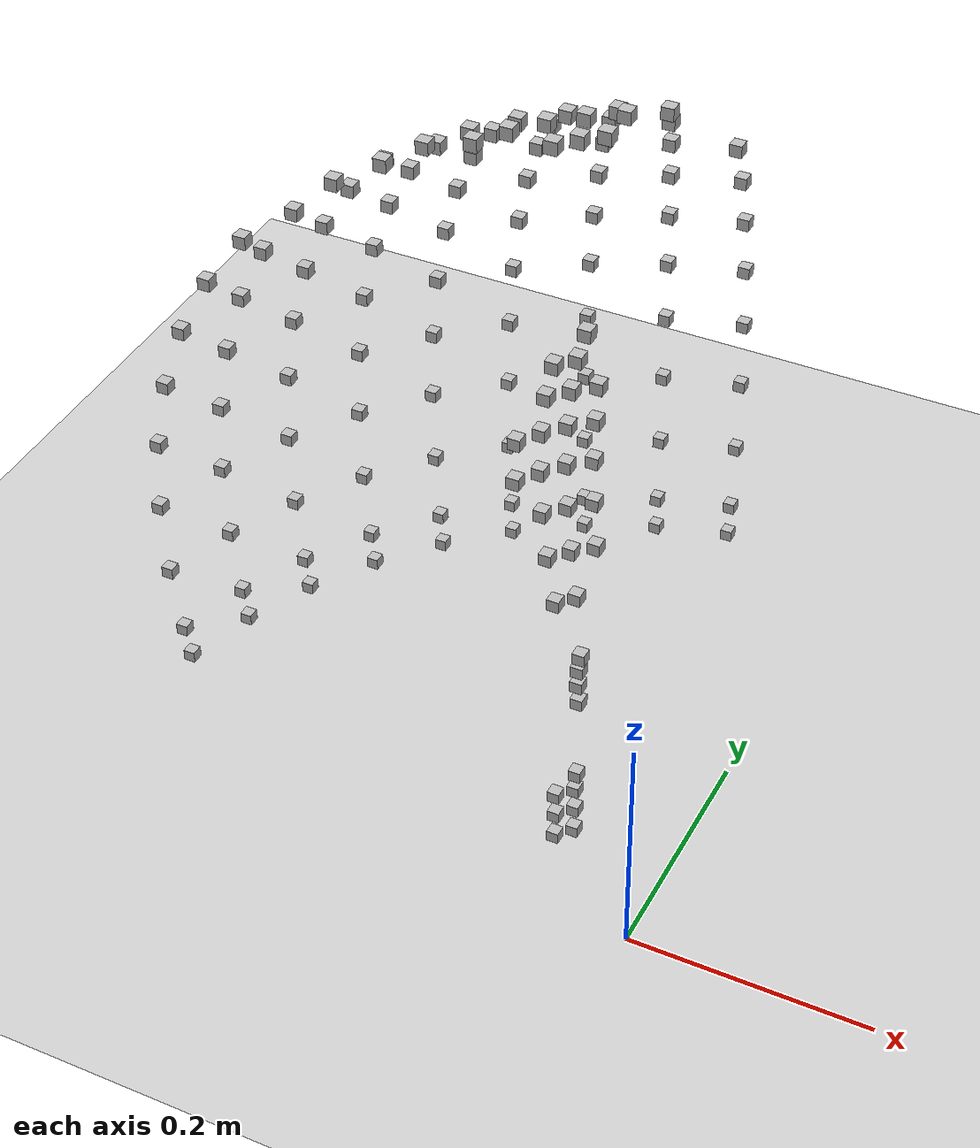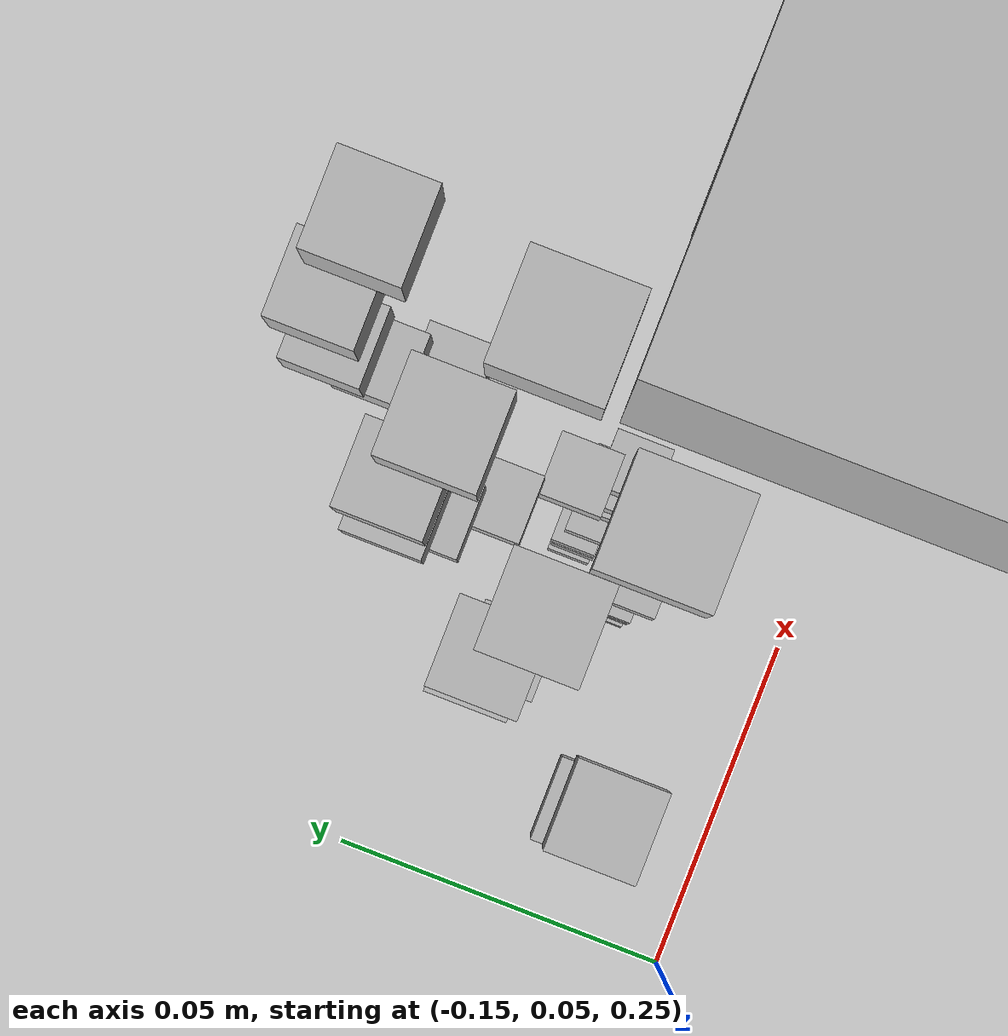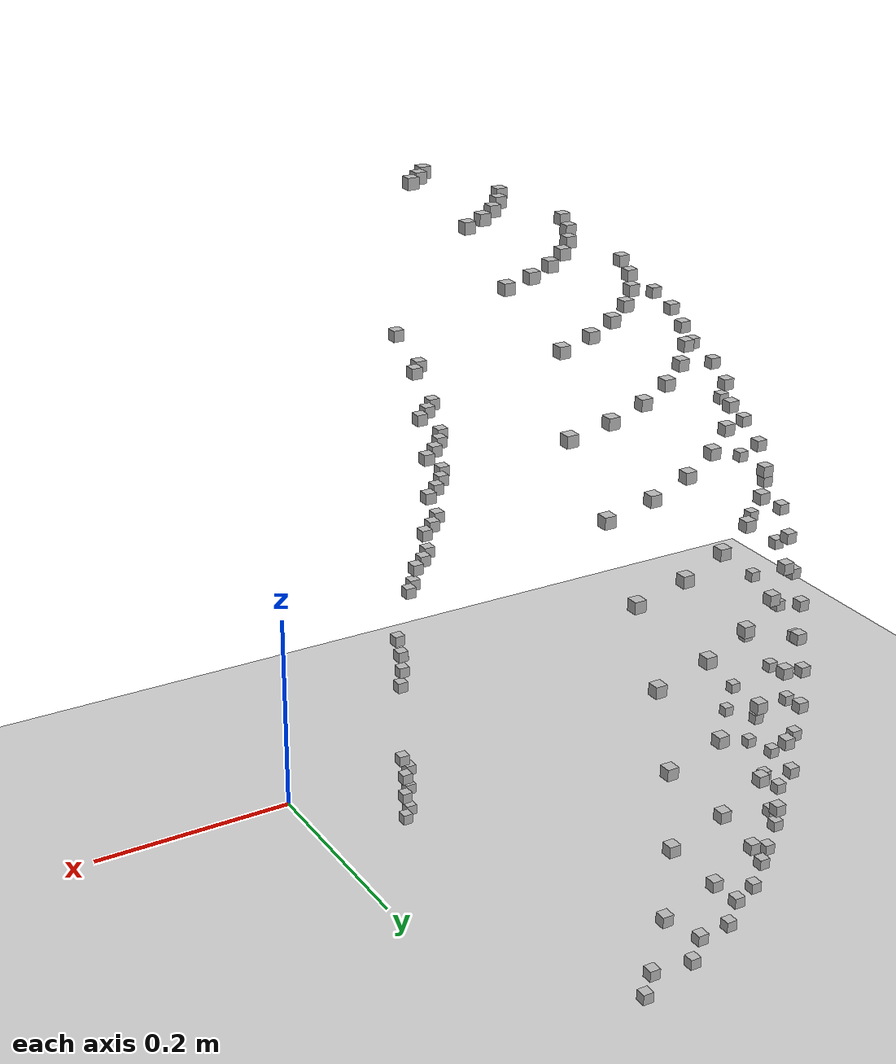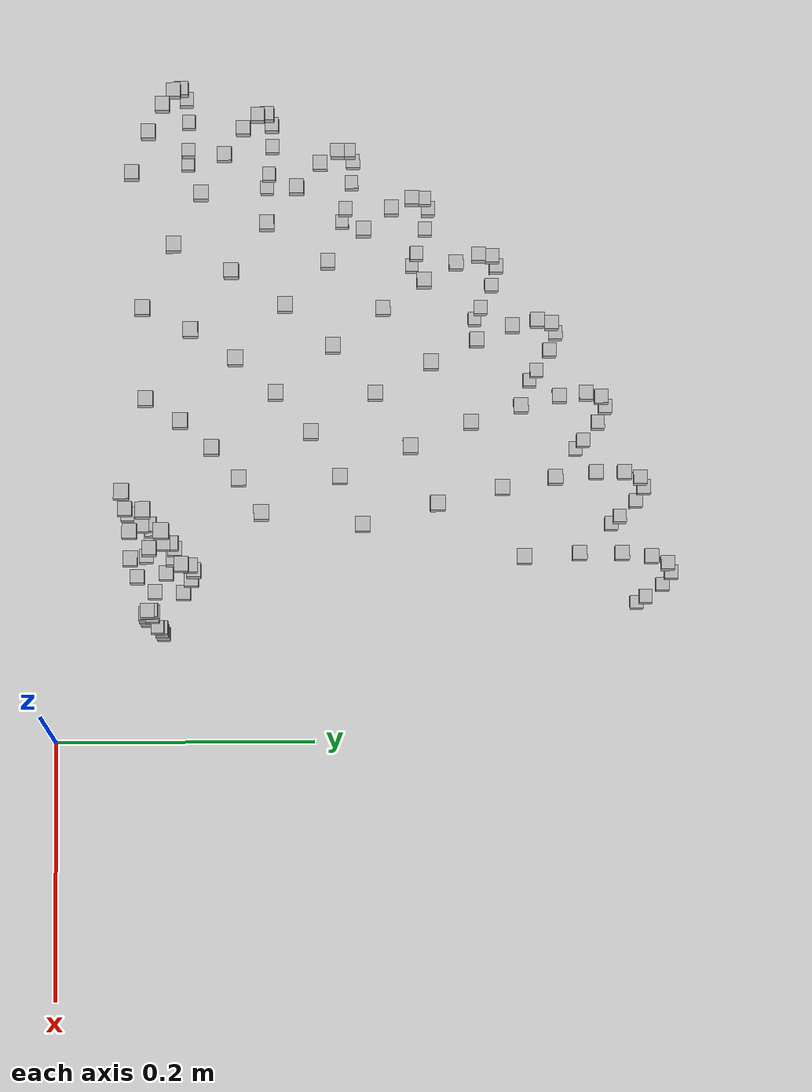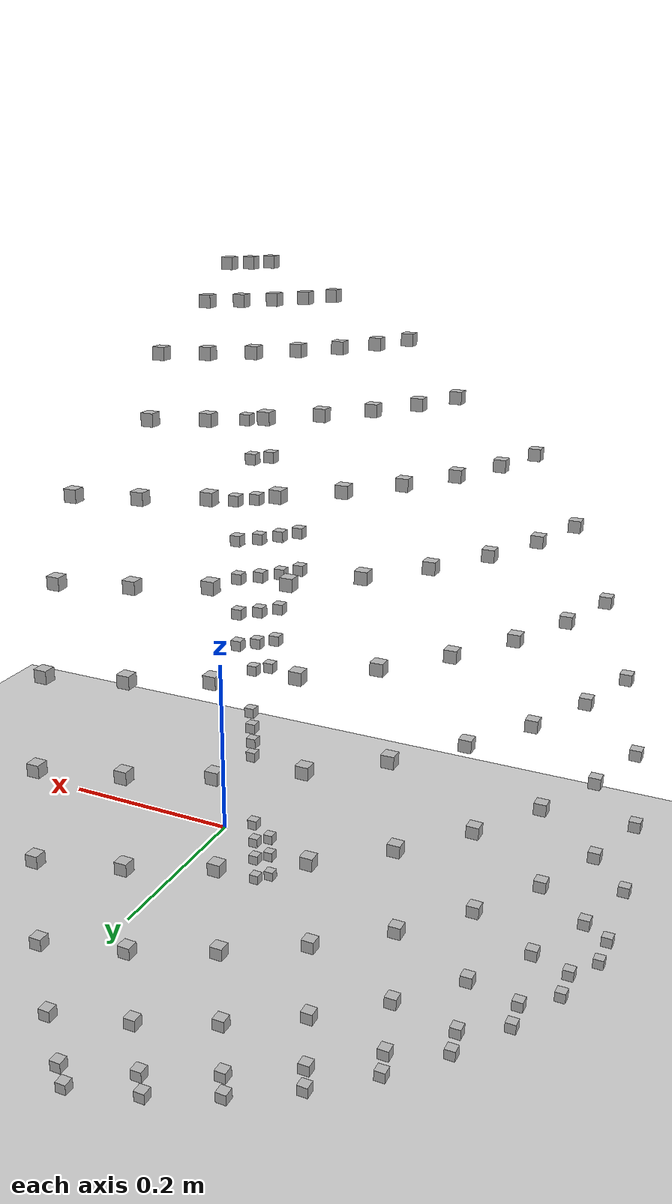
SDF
<sdf version="1.6">
 <world name="default">
  <model name="ground_plane">
   <static>1</static>
   <link name="link">
    <collision name="collision">
     <geometry><plane><normal>0 0 1</normal><size>100 100</size></plane></geometry>
     <surface>
      <contact><collide_bitmask>65535</collide_bitmask></contact>
      <friction><ode><mu>100</mu><mu2>50</mu2></ode></friction>
     </surface>
    </collision>
    <visual name="visual">
     <cast_shadows>0</cast_shadows>
     <geometry><plane><normal>0 0 1</normal><size>100 100</size></plane></geometry>
     <material>
      <script><uri>file://media/materials/scripts/gazebo.material</uri><name>Gazebo/Grey</name></script>
     </material>
    </visual>
   </link>
  </model>
  <model name="box_1685262135_6586287">
   <pose>-0.1034146451668708 0.44793804058795783 0.031024085780011867 0.0 0.0 0.0</pose>
   <static>1</static>
   <link name="box_1685262135_6586287_link">
    <visual name="visual"><geometry><box><size>0.01 0.01 0.01</size></box></geometry></visual>
   </link>
  </model>
  <model name="box_1685262135_6586452">
   <pose>-0.16474914709559374 0.42918620151636183 0.031024085780011867 0.0 0.0 0.0</pose>
   <static>1</static>
   <link name="box_1685262135_6586452_link">
    <visual name="visual"><geometry><box><size>0.01 0.01 0.01</size></box></geometry></visual>
   </link>
  </model>
  <model name="box_1685262135_6586614">
   <pose>-0.2228769942754781 0.40208074122431836 0.031024085780011867 0.0 0.0 0.0</pose>
   <static>1</static>
   <link name="box_1685262135_6586614_link">
    <visual name="visual"><geometry><box><size>0.01 0.01 0.01</size></box></geometry></visual>
   </link>
  </model>
  <model name="box_1685262135_6586773">
   <pose>-0.2766667942806138 0.3671492366644077 0.031024085780011867 0.0 0.0 0.0</pose>
   <static>1</static>
   <link name="box_1685262135_6586773_link">
    <visual name="visual"><geometry><box><size>0.01 0.01 0.01</size></box></geometry></visual>
   </link>
  </model>
  <model name="box_1685262135_658693">
   <pose>-0.3250715898388913 0.3250715898388913 0.031024085780011867 0.0 0.0 0.0</pose>
   <static>1</static>
   <link name="box_1685262135_658693_link">
    <visual name="visual"><geometry><box><size>0.01 0.01 0.01</size></box></geometry></visual>
   </link>
  </model>
  <model name="box_1685262135_6587093">
   <pose>-0.3671492366644078 0.2766667942806137 0.031024085780011867 0.0 0.0 0.0</pose>
   <static>1</static>
   <link name="box_1685262135_6587093_link">
    <visual name="visual"><geometry><box><size>0.01 0.01 0.01</size></box></geometry></visual>
   </link>
  </model>
  <model name="box_1685262135_658725">
   <pose>-0.4020807412243183 0.2228769942754782 0.031024085780011867 0.0 0.0 0.0</pose>
   <static>1</static>
   <link name="box_1685262135_658725_link">
    <visual name="visual"><geometry><box><size>0.01 0.01 0.01</size></box></geometry></visual>
   </link>
  </model>
  <model name="box_1685262135_6587431">
   <pose>-0.42918620151636183 0.1647491470955937 0.031024085780011867 0.0 0.0 0.0</pose>
   <static>1</static>
   <link name="box_1685262135_6587431_link">
    <visual name="visual"><geometry><box><size>0.01 0.01 0.01</size></box></geometry></visual>
   </link>
  </model>
  <model name="box_1685262135_6587594">
   <pose>-0.44793804058795783 0.1034146451668708 0.031024085780011867 0.0 0.0 0.0</pose>
   <static>1</static>
   <link name="box_1685262135_6587594_link">
    <visual name="visual"><geometry><box><size>0.01 0.01 0.01</size></box></geometry></visual>
   </link>
  </model>
  <model name="box_1685262135_6593828">
   <pose>-0.10465814249834977 0.4533242192789957 0.05746253559996678 0.0 0.0 0.0</pose>
   <static>1</static>
   <link name="box_1685262135_6593828_link">
    <visual name="visual"><geometry><box><size>0.01 0.01 0.01</size></box></geometry></visual>
   </link>
  </model>
  <model name="box_1685262135_6593995">
   <pose>-0.1667301539872795 0.4343469009069754 0.05746253559996678 0.0 0.0 0.0</pose>
   <static>1</static>
   <link name="box_1685262135_6593995_link">
    <visual name="visual"><geometry><box><size>0.01 0.01 0.01</size></box></geometry></visual>
   </link>
  </model>
  <model name="box_1685262135_6594152">
   <pose>-0.2255569526815859 0.4069155141710779 0.05746253559996678 0.0 0.0 0.0</pose>
   <static>1</static>
   <link name="box_1685262135_6594152_link">
    <visual name="visual"><geometry><box><size>0.01 0.01 0.01</size></box></geometry></visual>
   </link>
  </model>
  <model name="box_1685262135_6594312">
   <pose>-0.27999354185917624 0.37156397981137723 0.05746253559996678 0.0 0.0 0.0</pose>
   <static>1</static>
   <link name="box_1685262135_6594312_link">
    <visual name="visual"><geometry><box><size>0.01 0.01 0.01</size></box></geometry></visual>
   </link>
  </model>
  <model name="box_1685262135_6594467">
   <pose>-0.32898037523241097 0.328980375232411 0.05746253559996678 0.0 0.0 0.0</pose>
   <static>1</static>
   <link name="box_1685262135_6594467_link">
    <visual name="visual"><geometry><box><size>0.01 0.01 0.01</size></box></geometry></visual>
   </link>
  </model>
  <model name="box_1685262135_6594627">
   <pose>-0.37156397981137734 0.2799935418591762 0.05746253559996678 0.0 0.0 0.0</pose>
   <static>1</static>
   <link name="box_1685262135_6594627_link">
    <visual name="visual"><geometry><box><size>0.01 0.01 0.01</size></box></geometry></visual>
   </link>
  </model>
  <model name="box_1685262135_6594782">
   <pose>-0.40691551417107785 0.225556952681586 0.05746253559996678 0.0 0.0 0.0</pose>
   <static>1</static>
   <link name="box_1685262135_6594782_link">
    <visual name="visual"><geometry><box><size>0.01 0.01 0.01</size></box></geometry></visual>
   </link>
  </model>
  <model name="box_1685262135_6594946">
   <pose>-0.4343469009069754 0.16673015398727947 0.05746253559996678 0.0 0.0 0.0</pose>
   <static>1</static>
   <link name="box_1685262135_6594946_link">
    <visual name="visual"><geometry><box><size>0.01 0.01 0.01</size></box></geometry></visual>
   </link>
  </model>
  <model name="box_1685262135_6595125">
   <pose>-0.4533242192789957 0.10465814249834976 0.05746253559996678 0.0 0.0 0.0</pose>
   <static>1</static>
   <link name="box_1685262135_6595125_link">
    <visual name="visual"><geometry><box><size>0.01 0.01 0.01</size></box></geometry></visual>
   </link>
  </model>
  <model name="box_1685262135_6601028">
   <pose>-0.10685924200527455 0.46285822869013915 0.11486971929344875 0.0 0.0 0.0</pose>
   <static>1</static>
   <link name="box_1685262135_6601028_link">
    <visual name="visual"><geometry><box><size>0.01 0.01 0.01</size></box></geometry></visual>
   </link>
  </model>
  <model name="box_1685262135_6601198">
   <pose>-0.1702367101994412 0.44348179215001204 0.11486971929344875 0.0 0.0 0.0</pose>
   <static>1</static>
   <link name="box_1685262135_6601198_link">
    <visual name="visual"><geometry><box><size>0.01 0.01 0.01</size></box></geometry></visual>
   </link>
  </model>
  <model name="box_1685262135_6601362">
   <pose>-0.2303007144709634 0.4154734869787467 0.11486971929344875 0.0 0.0 0.0</pose>
   <static>1</static>
   <link name="box_1685262135_6601362_link">
    <visual name="visual"><geometry><box><size>0.01 0.01 0.01</size></box></geometry></visual>
   </link>
  </model>
  <model name="box_1685262135_6601524">
   <pose>-0.28588217729848836 0.37937846297752675 0.11486971929344875 0.0 0.0 0.0</pose>
   <static>1</static>
   <link name="box_1685262135_6601524_link">
    <visual name="visual"><geometry><box><size>0.01 0.01 0.01</size></box></geometry></visual>
   </link>
  </model>
  <model name="box_1685262135_6601682">
   <pose>-0.33589926873105497 0.335899268731055 0.11486971929344875 0.0 0.0 0.0</pose>
   <static>1</static>
   <link name="box_1685262135_6601682_link">
    <visual name="visual"><geometry><box><size>0.01 0.01 0.01</size></box></geometry></visual>
   </link>
  </model>
  <model name="box_1685262135_6601844">
   <pose>-0.37937846297752686 0.28588217729848825 0.11486971929344875 0.0 0.0 0.0</pose>
   <static>1</static>
   <link name="box_1685262135_6601844_link">
    <visual name="visual"><geometry><box><size>0.01 0.01 0.01</size></box></geometry></visual>
   </link>
  </model>
  <model name="box_1685262135_6601999">
   <pose>-0.41547348697874664 0.23030071447096348 0.11486971929344875 0.0 0.0 0.0</pose>
   <static>1</static>
   <link name="box_1685262135_6601999_link">
    <visual name="visual"><geometry><box><size>0.01 0.01 0.01</size></box></geometry></visual>
   </link>
  </model>
  <model name="box_1685262135_6602159">
   <pose>-0.44348179215001204 0.17023671019944117 0.11486971929344875 0.0 0.0 0.0</pose>
   <static>1</static>
   <link name="box_1685262135_6602159_link">
    <visual name="visual"><geometry><box><size>0.01 0.01 0.01</size></box></geometry></visual>
   </link>
  </model>
  <model name="box_1685262135_6602337">
   <pose>-0.46285822869013915 0.10685924200527454 0.11486971929344875 0.0 0.0 0.0</pose>
   <static>1</static>
   <link name="box_1685262135_6602337_link">
    <visual name="visual"><geometry><box><size>0.01 0.01 0.01</size></box></geometry></visual>
   </link>
  </model>
  <model name="box_1685262135_6608343">
   <pose>-0.10742996229707696 0.4653302898650457 0.18152491402812204 0.0 0.0 0.0</pose>
   <static>1</static>
   <link name="box_1685262135_6608343_link">
    <visual name="visual"><geometry><box><size>0.01 0.01 0.01</size></box></geometry></visual>
   </link>
  </model>
  <model name="box_1685262135_6608589">
   <pose>-0.17114592070007073 0.44585036648270676 0.18152491402812204 0.0 0.0 0.0</pose>
   <static>1</static>
   <link name="box_1685262135_6608589_link">
    <visual name="visual"><geometry><box><size>0.01 0.01 0.01</size></box></geometry></visual>
   </link>
  </model>
  <model name="box_1685262135_6608765">
   <pose>-0.23153071843223688 0.4176924728640571 0.18152491402812204 0.0 0.0 0.0</pose>
   <static>1</static>
   <link name="box_1685262135_6608765_link">
    <visual name="visual"><geometry><box><size>0.01 0.01 0.01</size></box></geometry></visual>
   </link>
  </model>
  <model name="box_1685262135_660893">
   <pose>-0.2874090340924084 0.3814046703792543 0.18152491402812204 0.0 0.0 0.0</pose>
   <static>1</static>
   <link name="box_1685262135_660893_link">
    <visual name="visual"><geometry><box><size>0.01 0.01 0.01</size></box></geometry></visual>
   </link>
  </model>
  <model name="box_1685262135_6609087">
   <pose>-0.3376932598269018 0.33769325982690185 0.18152491402812204 0.0 0.0 0.0</pose>
   <static>1</static>
   <link name="box_1685262135_6609087_link">
    <visual name="visual"><geometry><box><size>0.01 0.01 0.01</size></box></geometry></visual>
   </link>
  </model>
  <model name="box_1685262135_6609244">
   <pose>-0.3814046703792544 0.2874090340924083 0.18152491402812204 0.0 0.0 0.0</pose>
   <static>1</static>
   <link name="box_1685262135_6609244_link">
    <visual name="visual"><geometry><box><size>0.01 0.01 0.01</size></box></geometry></visual>
   </link>
  </model>
  <model name="box_1685262135_6609402">
   <pose>-0.4176924728640571 0.23153071843223696 0.18152491402812204 0.0 0.0 0.0</pose>
   <static>1</static>
   <link name="box_1685262135_6609402_link">
    <visual name="visual"><geometry><box><size>0.01 0.01 0.01</size></box></geometry></visual>
   </link>
  </model>
  <model name="box_1685262135_6609564">
   <pose>-0.44585036648270676 0.1711459207000707 0.18152491402812204 0.0 0.0 0.0</pose>
   <static>1</static>
   <link name="box_1685262135_6609564_link">
    <visual name="visual"><geometry><box><size>0.01 0.01 0.01</size></box></geometry></visual>
   </link>
  </model>
  <model name="box_1685262135_6609726">
   <pose>-0.4653302898650457 0.10742996229707695 0.18152491402812204 0.0 0.0 0.0</pose>
   <static>1</static>
   <link name="box_1685262135_6609726_link">
    <visual name="visual"><geometry><box><size>0.01 0.01 0.01</size></box></geometry></visual>
   </link>
  </model>
  <model name="box_1685262135_661571">
   <pose>-0.105906566310139 0.4587317369006427 0.24785452819062248 0.0 0.0 0.0</pose>
   <static>1</static>
   <link name="box_1685262135_661571_link">
    <visual name="visual"><geometry><box><size>0.01 0.01 0.01</size></box></geometry></visual>
   </link>
  </model>
  <model name="box_1685262135_6615891">
   <pose>-0.16871900922025182 0.4395280459256507 0.24785452819062248 0.0 0.0 0.0</pose>
   <static>1</static>
   <link name="box_1685262135_6615891_link">
    <visual name="visual"><geometry><box><size>0.01 0.01 0.01</size></box></geometry></visual>
   </link>
  </model>
  <model name="box_1685262135_6616063">
   <pose>-0.2282475285309208 0.41176944149245803 0.24785452819062248 0.0 0.0 0.0</pose>
   <static>1</static>
   <link name="box_1685262135_6616063_link">
    <visual name="visual"><geometry><box><size>0.01 0.01 0.01</size></box></geometry></visual>
   </link>
  </model>
  <model name="box_1685262135_6616225">
   <pose>-0.2833334693264511 0.3759962132614121 0.24785452819062248 0.0 0.0 0.0</pose>
   <static>1</static>
   <link name="box_1685262135_6616225_link">
    <visual name="visual"><geometry><box><size>0.01 0.01 0.01</size></box></geometry></visual>
   </link>
  </model>
  <model name="box_1685262135_6616385">
   <pose>-0.3329046464285864 0.33290464642858647 0.24785452819062248 0.0 0.0 0.0</pose>
   <static>1</static>
   <link name="box_1685262135_6616385_link">
    <visual name="visual"><geometry><box><size>0.01 0.01 0.01</size></box></geometry></visual>
   </link>
  </model>
  <model name="box_1685262135_6616542">
   <pose>-0.3759962132614122 0.283333469326451 0.24785452819062248 0.0 0.0 0.0</pose>
   <static>1</static>
   <link name="box_1685262135_6616542_link">
    <visual name="visual"><geometry><box><size>0.01 0.01 0.01</size></box></geometry></visual>
   </link>
  </model>
  <model name="box_1685262135_6616704">
   <pose>-0.411769441492458 0.2282475285309209 0.24785452819062248 0.0 0.0 0.0</pose>
   <static>1</static>
   <link name="box_1685262135_6616704_link">
    <visual name="visual"><geometry><box><size>0.01 0.01 0.01</size></box></geometry></visual>
   </link>
  </model>
  <model name="box_1685262135_6616862">
   <pose>-0.4395280459256507 0.1687190092202518 0.24785452819062248 0.0 0.0 0.0</pose>
   <static>1</static>
   <link name="box_1685262135_6616862_link">
    <visual name="visual"><geometry><box><size>0.01 0.01 0.01</size></box></geometry></visual>
   </link>
  </model>
  <model name="box_1685262135_6617022">
   <pose>-0.4587317369006427 0.10590656631013899 0.24785452819062248 0.0 0.0 0.0</pose>
   <static>1</static>
   <link name="box_1685262135_6617022_link">
    <visual name="visual"><geometry><box><size>0.01 0.01 0.01</size></box></geometry></visual>
   </link>
  </model>
  <model name="box_1685262135_662308">
   <pose>-0.10231771755927567 0.44318672511982327 0.31265492137086764 0.0 0.0 0.0</pose>
   <static>1</static>
   <link name="box_1685262135_662308_link">
    <visual name="visual"><geometry><box><size>0.01 0.01 0.01</size></box></geometry></visual>
   </link>
  </model>
  <model name="box_1685262135_6623366">
   <pose>-0.1630016394047314 0.42463378834042803 0.31265492137086764 0.0 0.0 0.0</pose>
   <static>1</static>
   <link name="box_1685262135_6623366_link">
    <visual name="visual"><geometry><box><size>0.01 0.01 0.01</size></box></geometry></visual>
   </link>
  </model>
  <model name="box_1685262135_66236">
   <pose>-0.22051291975079065 0.39781583788476155 0.31265492137086764 0.0 0.0 0.0</pose>
   <static>1</static>
   <link name="box_1685262135_66236_link">
    <visual name="visual"><geometry><box><size>0.01 0.01 0.01</size></box></geometry></visual>
   </link>
  </model>
  <model name="box_1685262135_662377">
   <pose>-0.27373216694362934 0.3632548546534768 0.31265492137086764 0.0 0.0 0.0</pose>
   <static>1</static>
   <link name="box_1685262135_662377_link">
    <visual name="visual"><geometry><box><size>0.01 0.01 0.01</size></box></geometry></visual>
   </link>
  </model>
  <model name="box_1685262135_6623936">
   <pose>-0.32162352887263507 0.3216235288726351 0.31265492137086764 0.0 0.0 0.0</pose>
   <static>1</static>
   <link name="box_1685262135_6623936_link">
    <visual name="visual"><geometry><box><size>0.01 0.01 0.01</size></box></geometry></visual>
   </link>
  </model>
  <model name="box_1685262135_6624095">
   <pose>-0.36325485465347684 0.27373216694362923 0.31265492137086764 0.0 0.0 0.0</pose>
   <static>1</static>
   <link name="box_1685262135_6624095_link">
    <visual name="visual"><geometry><box><size>0.01 0.01 0.01</size></box></geometry></visual>
   </link>
  </model>
  <model name="box_1685262135_6624255">
   <pose>-0.3978158378847615 0.2205129197507907 0.31265492137086764 0.0 0.0 0.0</pose>
   <static>1</static>
   <link name="box_1685262135_6624255_link">
    <visual name="visual"><geometry><box><size>0.01 0.01 0.01</size></box></geometry></visual>
   </link>
  </model>
  <model name="box_1685262135_6624413">
   <pose>-0.42463378834042803 0.16300163940473136 0.31265492137086764 0.0 0.0 0.0</pose>
   <static>1</static>
   <link name="box_1685262135_6624413_link">
    <visual name="visual"><geometry><box><size>0.01 0.01 0.01</size></box></geometry></visual>
   </link>
  </model>
  <model name="box_1685262135_6624572">
   <pose>-0.44318672511982327 0.10231771755927566 0.31265492137086764 0.0 0.0 0.0</pose>
   <static>1</static>
   <link name="box_1685262135_6624572_link">
    <visual name="visual"><geometry><box><size>0.01 0.01 0.01</size></box></geometry></visual>
   </link>
  </model>
  <model name="box_1685262135_6630635">
   <pose>-0.09674324757771992 0.41904104288279326 0.37450685986133164 0.0 0.0 0.0</pose>
   <static>1</static>
   <link name="box_1685262135_6630635_link">
    <visual name="visual"><geometry><box><size>0.01 0.01 0.01</size></box></geometry></visual>
   </link>
  </model>
  <model name="box_1685262135_66308">
   <pose>-0.15412099031011448 0.40149890649665854 0.37450685986133164 0.0 0.0 0.0</pose>
   <static>1</static>
   <link name="box_1685262135_66308_link">
    <visual name="visual"><geometry><box><size>0.01 0.01 0.01</size></box></geometry></visual>
   </link>
  </model>
  <model name="box_1685262135_6630983">
   <pose>-0.20849894327615065 0.37614205059380357 0.37450685986133164 0.0 0.0 0.0</pose>
   <static>1</static>
   <link name="box_1685262135_6630983_link">
    <visual name="visual"><geometry><box><size>0.01 0.01 0.01</size></box></geometry></visual>
   </link>
  </model>
  <model name="box_1685262135_6631155">
   <pose>-0.25881870147534947 0.34346401753138117 0.37450685986133164 0.0 0.0 0.0</pose>
   <static>1</static>
   <link name="box_1685262135_6631155_link">
    <visual name="visual"><geometry><box><size>0.01 0.01 0.01</size></box></geometry></visual>
   </link>
  </model>
  <model name="box_1685262135_6631317">
   <pose>-0.30410084805223986 0.3041008480522399 0.37450685986133164 0.0 0.0 0.0</pose>
   <static>1</static>
   <link name="box_1685262135_6631317_link">
    <visual name="visual"><geometry><box><size>0.01 0.01 0.01</size></box></geometry></visual>
   </link>
  </model>
  <model name="box_1685262135_663148">
   <pose>-0.3434640175313813 0.25881870147534936 0.37450685986133164 0.0 0.0 0.0</pose>
   <static>1</static>
   <link name="box_1685262135_663148_link">
    <visual name="visual"><geometry><box><size>0.01 0.01 0.01</size></box></geometry></visual>
   </link>
  </model>
  <model name="box_1685262135_663164">
   <pose>-0.37614205059380357 0.20849894327615073 0.37450685986133164 0.0 0.0 0.0</pose>
   <static>1</static>
   <link name="box_1685262135_663164_link">
    <visual name="visual"><geometry><box><size>0.01 0.01 0.01</size></box></geometry></visual>
   </link>
  </model>
  <model name="box_1685262135_66318">
   <pose>-0.40149890649665854 0.15412099031011445 0.37450685986133164 0.0 0.0 0.0</pose>
   <static>1</static>
   <link name="box_1685262135_66318_link">
    <visual name="visual"><geometry><box><size>0.01 0.01 0.01</size></box></geometry></visual>
   </link>
  </model>
  <model name="box_1685262135_6631958">
   <pose>-0.41904104288279326 0.0967432475777199 0.37450685986133164 0.0 0.0 0.0</pose>
   <static>1</static>
   <link name="box_1685262135_6631958_link">
    <visual name="visual"><geometry><box><size>0.01 0.01 0.01</size></box></geometry></visual>
   </link>
  </model>
  <model name="box_1685262135_6638794">
   <pose>-0.08355337796540885 0.08355337796540886 0.005648136022940203 0.0 0.0 0.0</pose>
   <static>1</static>
   <link name="box_1685262135_6638794_link">
    <visual name="visual"><geometry><box><size>0.01 0.01 0.01</size></box></geometry></visual>
   </link>
  </model>
  <model name="box_1685262135_663896">
   <pose>-0.09436862494177427 0.07111185952750554 0.005648136022940203 0.0 0.0 0.0</pose>
   <static>1</static>
   <link name="box_1685262135_663896_link">
    <visual name="visual"><geometry><box><size>0.01 0.01 0.01</size></box></geometry></visual>
   </link>
  </model>
  <model name="box_1685262135_664538">
   <pose>-0.08927289215147785 0.386683378581698 0.4324042100445494 0.0 0.0 0.0</pose>
   <static>1</static>
   <link name="box_1685262135_664538_link">
    <visual name="visual"><geometry><box><size>0.01 0.01 0.01</size></box></geometry></visual>
   </link>
  </model>
  <model name="box_1685262135_6645544">
   <pose>-0.1422200193887484 0.3704958172901689 0.4324042100445494 0.0 0.0 0.0</pose>
   <static>1</static>
   <link name="box_1685262135_6645544_link">
    <visual name="visual"><geometry><box><size>0.01 0.01 0.01</size></box></geometry></visual>
   </link>
  </model>
  <model name="box_1685262135_66457">
   <pose>-0.1923989957214912 0.3470969763478325 0.4324042100445494 0.0 0.0 0.0</pose>
   <static>1</static>
   <link name="box_1685262135_66457_link">
    <visual name="visual"><geometry><box><size>0.01 0.01 0.01</size></box></geometry></visual>
   </link>
  </model>
  <model name="box_1685262135_6645877">
   <pose>-0.23883314445312911 0.31694228757784426 0.4324042100445494 0.0 0.0 0.0</pose>
   <static>1</static>
   <link name="box_1685262135_6645877_link">
    <visual name="visual"><geometry><box><size>0.01 0.01 0.01</size></box></geometry></visual>
   </link>
  </model>
  <model name="box_1685262135_6646044">
   <pose>-0.280618677696662 0.28061867769666204 0.4324042100445494 0.0 0.0 0.0</pose>
   <static>1</static>
   <link name="box_1685262135_6646044_link">
    <visual name="visual"><geometry><box><size>0.01 0.01 0.01</size></box></geometry></visual>
   </link>
  </model>
  <model name="box_1685262135_6646204">
   <pose>-0.3169422875778443 0.23883314445312903 0.4324042100445494 0.0 0.0 0.0</pose>
   <static>1</static>
   <link name="box_1685262135_6646204_link">
    <visual name="visual"><geometry><box><size>0.01 0.01 0.01</size></box></geometry></visual>
   </link>
  </model>
  <model name="box_1685262135_6646361">
   <pose>-0.34709697634783243 0.19239899572149124 0.4324042100445494 0.0 0.0 0.0</pose>
   <static>1</static>
   <link name="box_1685262135_6646361_link">
    <visual name="visual"><geometry><box><size>0.01 0.01 0.01</size></box></geometry></visual>
   </link>
  </model>
  <model name="box_1685262135_664652">
   <pose>-0.3704958172901689 0.14222001938874837 0.4324042100445494 0.0 0.0 0.0</pose>
   <static>1</static>
   <link name="box_1685262135_664652_link">
    <visual name="visual"><geometry><box><size>0.01 0.01 0.01</size></box></geometry></visual>
   </link>
  </model>
  <model name="box_1685262135_664668">
   <pose>-0.386683378581698 0.08927289215147784 0.4324042100445494 0.0 0.0 0.0</pose>
   <static>1</static>
   <link name="box_1685262135_664668_link">
    <visual name="visual"><geometry><box><size>0.01 0.01 0.01</size></box></geometry></visual>
   </link>
  </model>
  <model name="box_1685262135_665344">
   <pose>-0.08312636691813918 0.0831263669181392 0.02920890265866033 0.0 0.0 0.0</pose>
   <static>1</static>
   <link name="box_1685262135_665344_link">
    <visual name="visual"><geometry><box><size>0.01 0.01 0.01</size></box></geometry></visual>
   </link>
  </model>
  <model name="box_1685262135_6653657">
   <pose>-0.09388634108507049 0.0707484325739872 0.02920890265866033 0.0 0.0 0.0</pose>
   <static>1</static>
   <link name="box_1685262135_6653657_link">
    <visual name="visual"><geometry><box><size>0.01 0.01 0.01</size></box></geometry></visual>
   </link>
  </model>
  <model name="box_1685262135_6660194">
   <pose>-0.08005048365371968 0.3467367386708653 0.4851615351605009 0.0 0.0 0.0</pose>
   <static>1</static>
   <link name="box_1685262135_6660194_link">
    <visual name="visual"><geometry><box><size>0.01 0.01 0.01</size></box></geometry></visual>
   </link>
  </model>
  <model name="box_1685262135_6660352">
   <pose>-0.12752786498720187 0.3322214465219071 0.4851615351605009 0.0 0.0 0.0</pose>
   <static>1</static>
   <link name="box_1685262135_6660352_link">
    <visual name="visual"><geometry><box><size>0.01 0.01 0.01</size></box></geometry></visual>
   </link>
  </model>
  <model name="box_1685262135_6660511">
   <pose>-0.17252306148950447 0.31123984181269443 0.4851615351605009 0.0 0.0 0.0</pose>
   <static>1</static>
   <link name="box_1685262135_6660511_link">
    <visual name="visual"><geometry><box><size>0.01 0.01 0.01</size></box></geometry></visual>
   </link>
  </model>
  <model name="box_1685262135_666067">
   <pose>-0.21416029284198773 0.2842003076126703 0.4851615351605009 0.0 0.0 0.0</pose>
   <static>1</static>
   <link name="box_1685262135_666067_link">
    <visual name="visual"><geometry><box><size>0.01 0.01 0.01</size></box></geometry></visual>
   </link>
  </model>
  <model name="box_1685262135_6660848">
   <pose>-0.2516291376980241 0.25162913769802414 0.4851615351605009 0.0 0.0 0.0</pose>
   <static>1</static>
   <link name="box_1685262135_6660848_link">
    <visual name="visual"><geometry><box><size>0.01 0.01 0.01</size></box></geometry></visual>
   </link>
  </model>
  <model name="box_1685262135_6661017">
   <pose>-0.2842003076126704 0.21416029284198765 0.4851615351605009 0.0 0.0 0.0</pose>
   <static>1</static>
   <link name="box_1685262135_6661017_link">
    <visual name="visual"><geometry><box><size>0.01 0.01 0.01</size></box></geometry></visual>
   </link>
  </model>
  <model name="box_1685262135_6661177">
   <pose>-0.3112398418126944 0.17252306148950453 0.4851615351605009 0.0 0.0 0.0</pose>
   <static>1</static>
   <link name="box_1685262135_6661177_link">
    <visual name="visual"><geometry><box><size>0.01 0.01 0.01</size></box></geometry></visual>
   </link>
  </model>
  <model name="box_1685262135_6661334">
   <pose>-0.3322214465219071 0.12752786498720184 0.4851615351605009 0.0 0.0 0.0</pose>
   <static>1</static>
   <link name="box_1685262135_6661334_link">
    <visual name="visual"><geometry><box><size>0.01 0.01 0.01</size></box></geometry></visual>
   </link>
  </model>
  <model name="box_1685262135_6661491">
   <pose>-0.3467367386708653 0.08005048365371968 0.4851615351605009 0.0 0.0 0.0</pose>
   <static>1</static>
   <link name="box_1685262135_6661491_link">
    <visual name="visual"><geometry><box><size>0.01 0.01 0.01</size></box></geometry></visual>
   </link>
  </model>
  <model name="box_1685262135_6668088">
   <pose>-0.08331855009983682 0.08331855009983684 0.05028140928145608 0.0 0.0 0.0</pose>
   <static>1</static>
   <link name="box_1685262135_6668088_link">
    <visual name="visual"><geometry><box><size>0.01 0.01 0.01</size></box></geometry></visual>
   </link>
  </model>
  <model name="box_1685262135_6668344">
   <pose>-0.09410340068260407 0.07091199871282232 0.05028140928145608 0.0 0.0 0.0</pose>
   <static>1</static>
   <link name="box_1685262135_6668344_link">
    <visual name="visual"><geometry><box><size>0.01 0.01 0.01</size></box></geometry></visual>
   </link>
  </model>
  <model name="box_1685262135_6675065">
   <pose>-0.1103421469078825 0.28745112028456166 0.5316791207351375 0.0 0.0 0.0</pose>
   <static>1</static>
   <link name="box_1685262135_6675065_link">
    <visual name="visual"><geometry><box><size>0.01 0.01 0.01</size></box></geometry></visual>
   </link>
  </model>
  <model name="box_1685262135_667522">
   <pose>-0.14927376850371465 0.2692970069900326 0.5316791207351375 0.0 0.0 0.0</pose>
   <static>1</static>
   <link name="box_1685262135_667522_link">
    <visual name="visual"><geometry><box><size>0.01 0.01 0.01</size></box></geometry></visual>
   </link>
  </model>
  <model name="box_1685262135_667538">
   <pose>-0.18529994599201705 0.24590133377524778 0.5316791207351375 0.0 0.0 0.0</pose>
   <static>1</static>
   <link name="box_1685262135_667538_link">
    <visual name="visual"><geometry><box><size>0.01 0.01 0.01</size></box></geometry></visual>
   </link>
  </model>
  <model name="box_1685262135_667554">
   <pose>-0.21771947080714926 0.2177194708071493 0.5316791207351375 0.0 0.0 0.0</pose>
   <static>1</static>
   <link name="box_1685262135_667554_link">
    <visual name="visual"><geometry><box><size>0.01 0.01 0.01</size></box></geometry></visual>
   </link>
  </model>
  <model name="box_1685262135_667572">
   <pose>-0.24590133377524787 0.18529994599201696 0.5316791207351375 0.0 0.0 0.0</pose>
   <static>1</static>
   <link name="box_1685262135_667572_link">
    <visual name="visual"><geometry><box><size>0.01 0.01 0.01</size></box></geometry></visual>
   </link>
  </model>
  <model name="box_1685262135_6675882">
   <pose>-0.26929700699003256 0.14927376850371468 0.5316791207351375 0.0 0.0 0.0</pose>
   <static>1</static>
   <link name="box_1685262135_6675882_link">
    <visual name="visual"><geometry><box><size>0.01 0.01 0.01</size></box></geometry></visual>
   </link>
  </model>
  <model name="box_1685262135_6676044">
   <pose>-0.28745112028456166 0.11034214690788248 0.5316791207351375 0.0 0.0 0.0</pose>
   <static>1</static>
   <link name="box_1685262135_6676044_link">
    <visual name="visual"><geometry><box><size>0.01 0.01 0.01</size></box></geometry></visual>
   </link>
  </model>
  <model name="box_1685262135_6682749">
   <pose>-0.08124555555465687 0.08124555555465687 0.06994559093984248 0.0 0.0 0.0</pose>
   <static>1</static>
   <link name="box_1685262135_6682749_link">
    <visual name="visual"><geometry><box><size>0.01 0.01 0.01</size></box></geometry></visual>
   </link>
  </model>
  <model name="box_1685262135_6689885">
   <pose>-0.09101753633860656 0.23710878861107465 0.5710245451470004 0.0 0.0 0.0</pose>
   <static>1</static>
   <link name="box_1685262135_6689885_link">
    <visual name="visual"><geometry><box><size>0.01 0.01 0.01</size></box></geometry></visual>
   </link>
  </model>
  <model name="box_1685262135_669005">
   <pose>-0.12313092530753551 0.22213406940555283 0.5710245451470004 0.0 0.0 0.0</pose>
   <static>1</static>
   <link name="box_1685262135_669005_link">
    <visual name="visual"><geometry><box><size>0.01 0.01 0.01</size></box></geometry></visual>
   </link>
  </model>
  <model name="box_1685262135_6690252">
   <pose>-0.15284771087470497 0.2028357632128108 0.5710245451470004 0.0 0.0 0.0</pose>
   <static>1</static>
   <link name="box_1685262135_6690252_link">
    <visual name="visual"><geometry><box><size>0.01 0.01 0.01</size></box></geometry></visual>
   </link>
  </model>
  <model name="box_1685262135_6690483">
   <pose>-0.1795894896113924 0.17958948961139243 0.5710245451470004 0.0 0.0 0.0</pose>
   <static>1</static>
   <link name="box_1685262135_6690483_link">
    <visual name="visual"><geometry><box><size>0.01 0.01 0.01</size></box></geometry></visual>
   </link>
  </model>
  <model name="box_1685262135_6690738">
   <pose>-0.20283576321281085 0.15284771087470492 0.5710245451470004 0.0 0.0 0.0</pose>
   <static>1</static>
   <link name="box_1685262135_6690738_link">
    <visual name="visual"><geometry><box><size>0.01 0.01 0.01</size></box></geometry></visual>
   </link>
  </model>
  <model name="box_1685262135_669103">
   <pose>-0.2221340694055528 0.12313092530753555 0.5710245451470004 0.0 0.0 0.0</pose>
   <static>1</static>
   <link name="box_1685262135_669103_link">
    <visual name="visual"><geometry><box><size>0.01 0.01 0.01</size></box></geometry></visual>
   </link>
  </model>
  <model name="box_1685262135_6691287">
   <pose>-0.23710878861107465 0.09101753633860654 0.5710245451470004 0.0 0.0 0.0</pose>
   <static>1</static>
   <link name="box_1685262135_6691287_link">
    <visual name="visual"><geometry><box><size>0.01 0.01 0.01</size></box></geometry></visual>
   </link>
  </model>
  <model name="box_1685262135_67077">
   <pose>-0.09452986055921409 0.1705363827479709 0.6025204345093003 0.0 0.0 0.0</pose>
   <static>1</static>
   <link name="box_1685262135_67077_link">
    <visual name="visual"><geometry><box><size>0.01 0.01 0.01</size></box></geometry></visual>
   </link>
  </model>
  <model name="box_1685262135_6707869">
   <pose>-0.1173439796679306 0.15572072056665795 0.6025204345093003 0.0 0.0 0.0</pose>
   <static>1</static>
   <link name="box_1685262135_6707869_link">
    <visual name="visual"><geometry><box><size>0.01 0.01 0.01</size></box></geometry></visual>
   </link>
  </model>
  <model name="box_1685262135_6708028">
   <pose>-0.13787413168920934 0.13787413168920934 0.6025204345093003 0.0 0.0 0.0</pose>
   <static>1</static>
   <link name="box_1685262135_6708028_link">
    <visual name="visual"><geometry><box><size>0.01 0.01 0.01</size></box></geometry></visual>
   </link>
  </model>
  <model name="box_1685262135_6708198">
   <pose>-0.15572072056665798 0.11734397966793056 0.6025204345093003 0.0 0.0 0.0</pose>
   <static>1</static>
   <link name="box_1685262135_6708198_link">
    <visual name="visual"><geometry><box><size>0.01 0.01 0.01</size></box></geometry></visual>
   </link>
  </model>
  <model name="box_1685262135_6708407">
   <pose>-0.17053638274797087 0.09452986055921411 0.6025204345093003 0.0 0.0 0.0</pose>
   <static>1</static>
   <link name="box_1685262135_6708407_link">
    <visual name="visual"><geometry><box><size>0.01 0.01 0.01</size></box></geometry></visual>
   </link>
  </model>
  <model name="box_1685262135_6723638">
   <pose>-0.07959133904925973 0.10562127433115441 0.6254485040649695 0.0 0.0 0.0</pose>
   <static>1</static>
   <link name="box_1685262135_6723638_link">
    <visual name="visual"><geometry><box><size>0.01 0.01 0.01</size></box></geometry></visual>
   </link>
  </model>
  <model name="box_1685262135_6723814">
   <pose>-0.09351640188488647 0.09351640188488648 0.6254485040649695 0.0 0.0 0.0</pose>
   <static>1</static>
   <link name="box_1685262135_6723814_link">
    <visual name="visual"><geometry><box><size>0.01 0.01 0.01</size></box></geometry></visual>
   </link>
  </model>
  <model name="box_1685262135_6723976">
   <pose>-0.10562127433115445 0.0795913390492597 0.6254485040649695 0.0 0.0 0.0</pose>
   <static>1</static>
   <link name="box_1685262135_6723976_link">
    <visual name="visual"><geometry><box><size>0.01 0.01 0.01</size></box></geometry></visual>
   </link>
  </model>
  <model name="box_1685262135_6762474">
   <pose>-0.0805123213592025 0.08051232135920251 0.14825398363050718 0.0 0.0 0.0</pose>
   <static>1</static>
   <link name="box_1685262135_6762474_link">
    <visual name="visual"><geometry><box><size>0.01 0.01 0.01</size></box></geometry></visual>
   </link>
  </model>
  <model name="box_1685262135_6771064">
   <pose>-0.08149873586763312 0.08149873586763313 0.16428489958480497 0.0 0.0 0.0</pose>
   <static>1</static>
   <link name="box_1685262135_6771064_link">
    <visual name="visual"><geometry><box><size>0.01 0.01 0.01</size></box></geometry></visual>
   </link>
  </model>
  <model name="box_1685262135_6778536">
   <pose>-0.08090598714214602 0.08090598714214603 0.18035913689155542 0.0 0.0 0.0</pose>
   <static>1</static>
   <link name="box_1685262135_6778536_link">
    <visual name="visual"><geometry><box><size>0.01 0.01 0.01</size></box></geometry></visual>
   </link>
  </model>
  <model name="box_1685262135_678598">
   <pose>-0.07873525598267714 0.07873525598267715 0.19617448160834577 0.0 0.0 0.0</pose>
   <static>1</static>
   <link name="box_1685262135_678598_link">
    <visual name="visual"><geometry><box><size>0.01 0.01 0.01</size></box></geometry></visual>
   </link>
  </model>
  <model name="box_1685262135_6808114">
   <pose>-0.08645206394642545 0.08645206394642546 0.24636117300793503 0.0 0.0 0.0</pose>
   <static>1</static>
   <link name="box_1685262135_6808114_link">
    <visual name="visual"><geometry><box><size>0.01 0.01 0.01</size></box></geometry></visual>
   </link>
  </model>
  <model name="box_1685262135_6808329">
   <pose>-0.09764252022677139 0.07357891657912756 0.24636117300793503 0.0 0.0 0.0</pose>
   <static>1</static>
   <link name="box_1685262135_6808329_link">
    <visual name="visual"><geometry><box><size>0.01 0.01 0.01</size></box></geometry></visual>
   </link>
  </model>
  <model name="box_1685262135_6815426">
   <pose>-0.08159386318467146 0.10827871361522245 0.2798396861917631 0.0 0.0 0.0</pose>
   <static>1</static>
   <link name="box_1685262135_6815426_link">
    <visual name="visual"><geometry><box><size>0.01 0.01 0.01</size></box></geometry></visual>
   </link>
  </model>
  <model name="box_1685262135_6815622">
   <pose>-0.09586928165884588 0.0958692816588459 0.2798396861917631 0.0 0.0 0.0</pose>
   <static>1</static>
   <link name="box_1685262135_6815622_link">
    <visual name="visual"><geometry><box><size>0.01 0.01 0.01</size></box></geometry></visual>
   </link>
  </model>
  <model name="box_1685262135_681579">
   <pose>-0.10827871361522248 0.08159386318467143 0.2798396861917631 0.0 0.0 0.0</pose>
   <static>1</static>
   <link name="box_1685262135_681579_link">
    <visual name="visual"><geometry><box><size>0.01 0.01 0.01</size></box></geometry></visual>
   </link>
  </model>
  <model name="box_1685262135_6822777">
   <pose>-0.08671263945479092 0.1150715591575179 0.314821790288947 0.0 0.0 0.0</pose>
   <static>1</static>
   <link name="box_1685262135_6822777_link">
    <visual name="visual"><geometry><box><size>0.01 0.01 0.01</size></box></geometry></visual>
   </link>
  </model>
  <model name="box_1685262135_6822941">
   <pose>-0.10188362372864125 0.10188362372864126 0.314821790288947 0.0 0.0 0.0</pose>
   <static>1</static>
   <link name="box_1685262135_6822941_link">
    <visual name="visual"><geometry><box><size>0.01 0.01 0.01</size></box></geometry></visual>
   </link>
  </model>
  <model name="box_1685262135_682319">
   <pose>-0.11507155915751793 0.08671263945479088 0.314821790288947 0.0 0.0 0.0</pose>
   <static>1</static>
   <link name="box_1685262135_682319_link">
    <visual name="visual"><geometry><box><size>0.01 0.01 0.01</size></box></geometry></visual>
   </link>
  </model>
  <model name="box_1685262135_683011">
   <pose>-0.08885350582625642 0.11791258478955248 0.3506667056619606 0.0 0.0 0.0</pose>
   <static>1</static>
   <link name="box_1685262135_683011_link">
    <visual name="visual"><geometry><box><size>0.01 0.01 0.01</size></box></geometry></visual>
   </link>
  </model>
  <model name="box_1685262135_6830273">
   <pose>-0.10439904968286345 0.10439904968286347 0.3506667056619606 0.0 0.0 0.0</pose>
   <static>1</static>
   <link name="box_1685262135_6830273_link">
    <visual name="visual"><geometry><box><size>0.01 0.01 0.01</size></box></geometry></visual>
   </link>
  </model>
  <model name="box_1685262135_6830454">
   <pose>-0.11791258478955251 0.08885350582625638 0.3506667056619606 0.0 0.0 0.0</pose>
   <static>1</static>
   <link name="box_1685262135_6830454_link">
    <visual name="visual"><geometry><box><size>0.01 0.01 0.01</size></box></geometry></visual>
   </link>
  </model>
  <model name="box_1685262135_6830623">
   <pose>-0.12913108555689015 0.07157852954810615 0.3506667056619606 0.0 0.0 0.0</pose>
   <static>1</static>
   <link name="box_1685262135_6830623_link">
    <visual name="visual"><geometry><box><size>0.01 0.01 0.01</size></box></geometry></visual>
   </link>
  </model>
  <model name="box_1685262135_683735">
   <pose>-0.08796682039283524 0.11673591347672466 0.38661397693110494 0.0 0.0 0.0</pose>
   <static>1</static>
   <link name="box_1685262135_683735_link">
    <visual name="visual"><geometry><box><size>0.01 0.01 0.01</size></box></geometry></visual>
   </link>
  </model>
  <model name="box_1685262135_6837506">
   <pose>-0.10335723241571118 0.1033572324157112 0.38661397693110494 0.0 0.0 0.0</pose>
   <static>1</static>
   <link name="box_1685262135_6837506_link">
    <visual name="visual"><geometry><box><size>0.01 0.01 0.01</size></box></geometry></visual>
   </link>
  </model>
  <model name="box_1685262135_6837666">
   <pose>-0.11673591347672468 0.08796682039283521 0.38661397693110494 0.0 0.0 0.0</pose>
   <static>1</static>
   <link name="box_1685262135_6837666_link">
    <visual name="visual"><geometry><box><size>0.01 0.01 0.01</size></box></geometry></visual>
   </link>
  </model>
  <model name="box_1685262135_683786">
   <pose>-0.1278424627670472 0.07086423427178788 0.38661397693110494 0.0 0.0 0.0</pose>
   <static>1</static>
   <link name="box_1685262135_683786_link">
    <visual name="visual"><geometry><box><size>0.01 0.01 0.01</size></box></geometry></visual>
   </link>
  </model>
  <model name="box_1685262135_6845522">
   <pose>-0.08406656898077758 0.11156010503733585 0.42204584917069304 0.0 0.0 0.0</pose>
   <static>1</static>
   <link name="box_1685262135_6845522_link">
    <visual name="visual"><geometry><box><size>0.01 0.01 0.01</size></box></geometry></visual>
   </link>
  </model>
  <model name="box_1685262135_6845791">
   <pose>-0.09877460467180124 0.09877460467180126 0.42204584917069304 0.0 0.0 0.0</pose>
   <static>1</static>
   <link name="box_1685262135_6845791_link">
    <visual name="visual"><geometry><box><size>0.01 0.01 0.01</size></box></geometry></visual>
   </link>
  </model>
  <model name="box_1685262135_6846023">
   <pose>-0.11156010503733588 0.08406656898077755 0.42204584917069304 0.0 0.0 0.0</pose>
   <static>1</static>
   <link name="box_1685262135_6846023_link">
    <visual name="visual"><geometry><box><size>0.01 0.01 0.01</size></box></geometry></visual>
   </link>
  </model>
  <model name="box_1685262135_6853495">
   <pose>-0.090744911319215 0.09074491131921501 0.45627229759588134 0.0 0.0 0.0</pose>
   <static>1</static>
   <link name="box_1685262135_6853495_link">
    <visual name="visual"><geometry><box><size>0.01 0.01 0.01</size></box></geometry></visual>
   </link>
  </model>
  <model name="box_1685262135_685366">
   <pose>-0.10249103878484542 0.0772325373755628 0.45627229759588134 0.0 0.0 0.0</pose>
   <static>1</static>
   <link name="box_1685262135_685366_link">
    <visual name="visual"><geometry><box><size>0.01 0.01 0.01</size></box></geometry></visual>
   </link>
  </model>
  <model name="box_1685262135_6861222">
   <pose>-0.07941251592485268 0.0794125159248527 0.4885508417419748 0.0 0.0 0.0</pose>
   <static>1</static>
   <link name="box_1685262135_6861222_link">
    <visual name="visual"><geometry><box><size>0.01 0.01 0.01</size></box></geometry></visual>
   </link>
  </model>
 </world>
</sdf>
